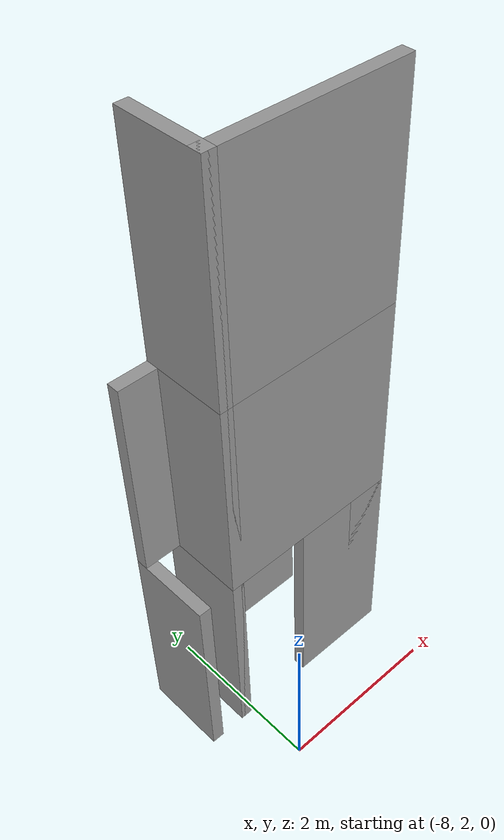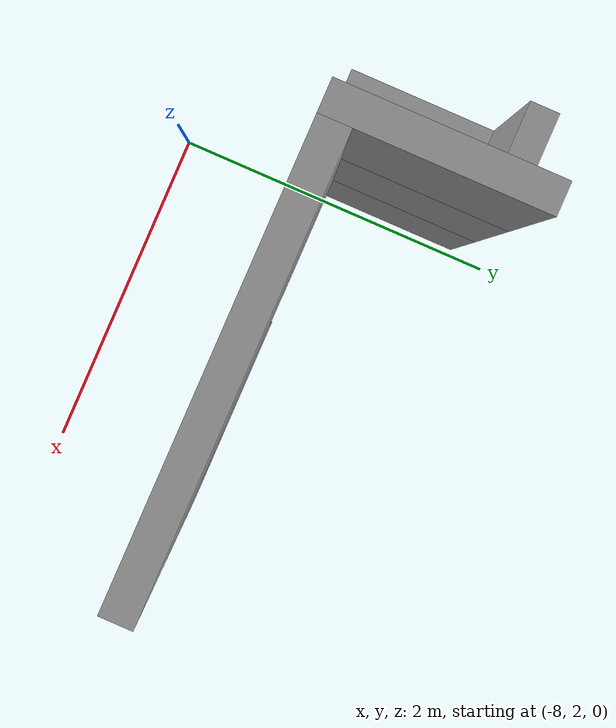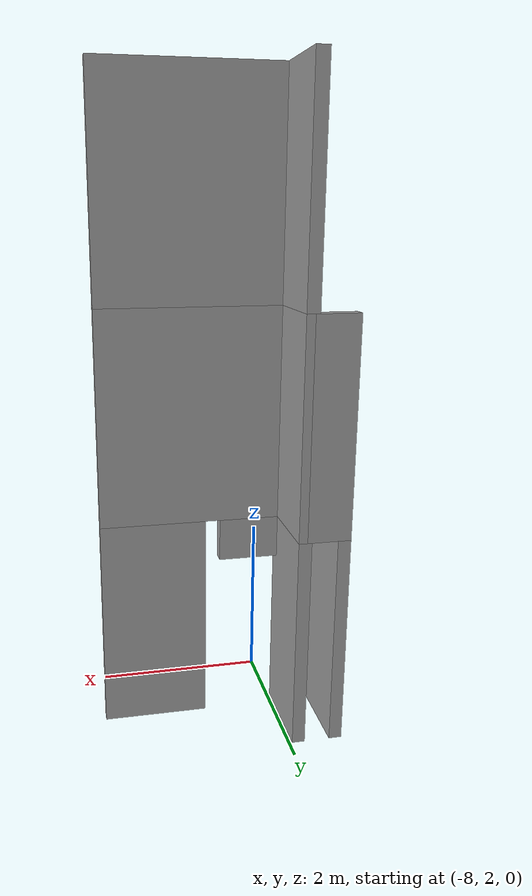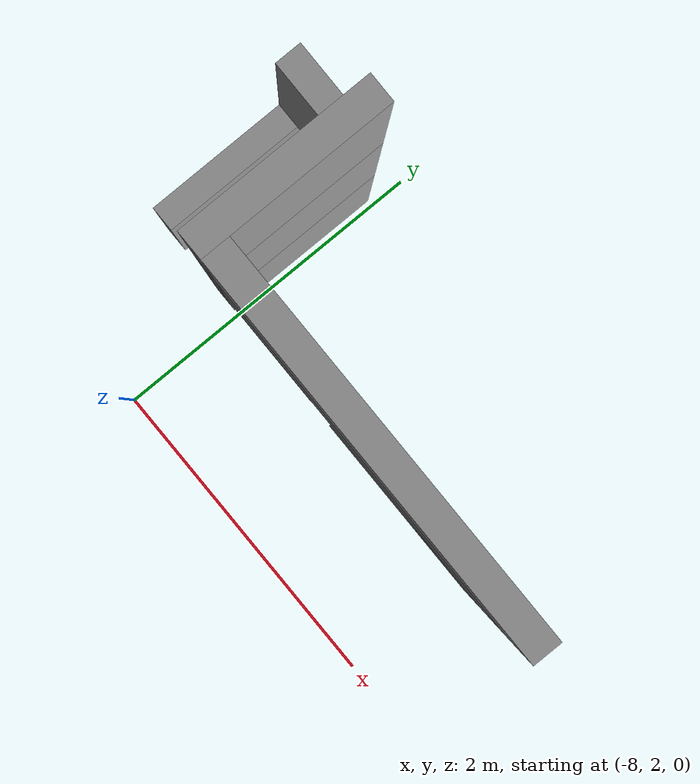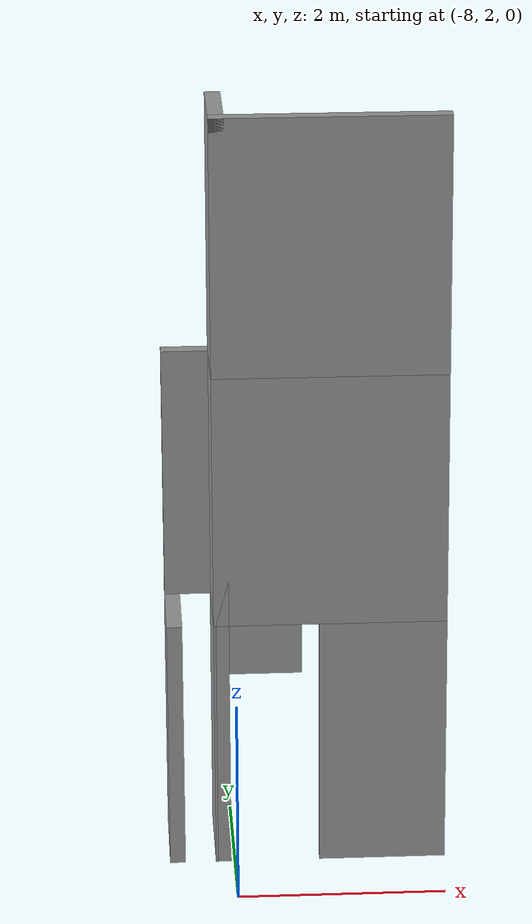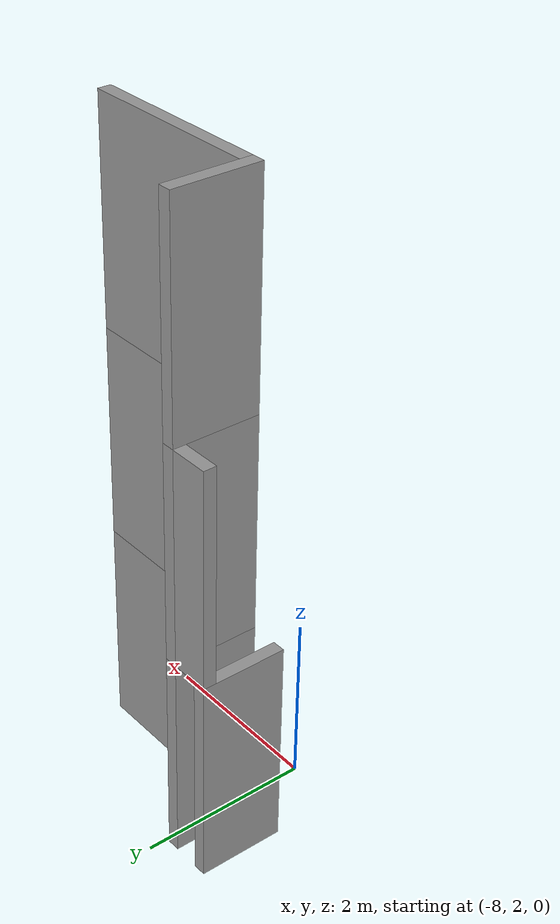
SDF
<sdf version="1.7">
 <model name="mapagazebo">
  <pose>-4.67869 9.01252 0 0 -0 0</pose>
  <link name="Wall_1144">
   <collision name="Wall_1144_Collision">
    <geometry><box><size>0.5 0.15 2.5</size></box></geometry>
    <pose>0 0 1.25 0 -0 0</pose>
   </collision>
   <visual name="Wall_1144_Visual">
    <pose>0 0 1.25 0 -0 0</pose>
    <geometry><box><size>0.5 0.15 2.5</size></box></geometry>
    <material>
     <script><uri>file://media/materials/scripts/gazebo.material</uri><name>Gazebo/Grey</name></script>
     <ambient>1 1 1 1</ambient>
    </material>
    <meta><layer>1</layer></meta>
   </visual>
   <pose>-3.70959 -5.30647 2.5 0 -0 0</pose>
  </link>
  <link name="Wall_1146">
   <collision name="Wall_1146_Collision">
    <geometry><box><size>1 0.15 2.5</size></box></geometry>
    <pose>0 0 1.25 0 -0 0</pose>
   </collision>
   <visual name="Wall_1146_Visual">
    <pose>0 0 1.25 0 -0 0</pose>
    <geometry><box><size>1 0.15 2.5</size></box></geometry>
    <material>
     <script><uri>file://media/materials/scripts/gazebo.material</uri><name>Gazebo/Grey</name></script>
     <ambient>1 1 1 1</ambient>
    </material>
    <meta><layer>1</layer></meta>
   </visual>
   <pose>-3.43459 -5.73147 2.5 0 -0 -1.5708</pose>
  </link>
  <link name="Wall_1147">
   <collision name="Wall_1147_Collision">
    <geometry><box><size>2.25 0.15 2.5</size></box></geometry>
    <pose>0 0 1.25 0 -0 0</pose>
   </collision>
   <visual name="Wall_1147_Visual">
    <pose>0 0 1.25 0 -0 0</pose>
    <geometry><box><size>2.25 0.15 2.5</size></box></geometry>
    <material>
     <script><uri>file://media/materials/scripts/gazebo.material</uri><name>Gazebo/Grey</name></script>
     <ambient>1 1 1 1</ambient>
    </material>
    <meta><layer>1</layer></meta>
   </visual>
   <pose>-2.38459 -6.15647 2.5 0 -0 0</pose>
  </link>
  <link name="Wall_1770">
   <collision name="Wall_1770_Collision">
    <geometry><box><size>1 0.15 2.5</size></box></geometry>
    <pose>0 0 1.25 0 -0 0</pose>
   </collision>
   <visual name="Wall_1770_Visual">
    <pose>0 0 1.25 0 -0 0</pose>
    <geometry><box><size>1 0.15 2.5</size></box></geometry>
    <material>
     <script><uri>file://media/materials/scripts/gazebo.material</uri><name>Gazebo/Grey</name></script>
     <ambient>1 1 1 1</ambient>
    </material>
    <meta><layer>2</layer></meta>
   </visual>
   <pose>-3.43459 -5.73147 5 0 -0 -1.5708</pose>
  </link>
  <link name="Wall_1771">
   <collision name="Wall_1771_Collision">
    <geometry><box><size>2.25 0.15 2.5</size></box></geometry>
    <pose>0 0 1.25 0 -0 0</pose>
   </collision>
   <visual name="Wall_1771_Visual">
    <pose>0 0 1.25 0 -0 0</pose>
    <geometry><box><size>2.25 0.15 2.5</size></box></geometry>
    <material>
     <script><uri>file://media/materials/scripts/gazebo.material</uri><name>Gazebo/Grey</name></script>
     <ambient>1 1 1 1</ambient>
    </material>
    <meta><layer>2</layer></meta>
   </visual>
   <pose>-2.38459 -6.15647 5 0 -0 0</pose>
  </link>
  <link name="Wall_452">
   <collision name="Wall_452_Collision">
    <geometry><box><size>1 0.15 2.5</size></box></geometry>
    <pose>0 0 1.25 0 -0 0</pose>
   </collision>
   <visual name="Wall_452_Visual">
    <pose>0 0 1.25 0 -0 0</pose>
    <geometry><box><size>1 0.15 2.5</size></box></geometry>
    <material>
     <script><uri>file://media/materials/scripts/gazebo.material</uri><name>Gazebo/Grey</name></script>
     <ambient>1 1 1 1</ambient>
    </material>
    <meta><layer>0</layer></meta>
   </visual>
   <pose>-3.88459 -5.73147 0 0 -0 1.5708</pose>
  </link>
  <link name="Wall_455">
   <collision name="Wall_455_Collision">
    <geometry><box><size>1 0.15 2.5</size></box></geometry>
    <pose>0 0 1.25 0 -0 0</pose>
   </collision>
   <visual name="Wall_455_Visual">
    <pose>0 0 1.25 0 -0 0</pose>
    <geometry><box><size>1 0.15 2.5</size></box></geometry>
    <material>
     <script><uri>file://media/materials/scripts/gazebo.material</uri><name>Gazebo/Grey</name></script>
     <ambient>1 1 1 1</ambient>
    </material>
    <meta><layer>0</layer></meta>
   </visual>
   <pose>-3.43459 -5.73147 0 0 -0 -1.5708</pose>
  </link>
  <link name="Wall_456">
   <pose>-2.38459 -6.15647 0 0 -0 0</pose>
   <visual name="Wall_456_Visual_0">
    <pose>-1.06597 0 1.25 0 -0 0</pose>
    <geometry><box><size>0.11805 0.15 2.5</size></box></geometry>
    <material>
     <script><uri>file://media/materials/scripts/gazebo.material</uri><name>Gazebo/Grey</name></script>
     <ambient>1 1 1 1</ambient>
    </material>
    <meta><layer>0</layer></meta>
   </visual>
   <collision name="Wall_456_Collision_0">
    <geometry><box><size>0.11805 0.15 2.5</size></box></geometry>
    <pose>-1.06597 0 1.25 0 -0 0</pose>
   </collision>
   <visual name="Wall_456_Visual_1">
    <pose>0.509025 0 1.25 0 -0 0</pose>
    <geometry><box><size>1.23195 0.15 2.5</size></box></geometry>
    <material>
     <script><uri>file://media/materials/scripts/gazebo.material</uri><name>Gazebo/Grey</name></script>
     <ambient>1 1 1 1</ambient>
    </material>
    <meta><layer>0</layer></meta>
   </visual>
   <collision name="Wall_456_Collision_1">
    <geometry><box><size>1.23195 0.15 2.5</size></box></geometry>
    <pose>0.509025 0 1.25 0 -0 0</pose>
   </collision>
   <visual name="Wall_456_Visual_2">
    <pose>0.873674 0 1.25 0 -0 0</pose>
    <geometry><box><size>0.502652 0.15 2.5</size></box></geometry>
    <material>
     <script><uri>file://media/materials/scripts/gazebo.material</uri><name>Gazebo/Grey</name></script>
     <ambient>1 1 1 1</ambient>
    </material>
    <meta><layer>0</layer></meta>
   </visual>
   <collision name="Wall_456_Collision_2">
    <geometry><box><size>0.502652 0.15 2.5</size></box></geometry>
    <pose>0.873674 0 1.25 0 -0 0</pose>
   </collision>
   <visual name="Wall_456_Visual_3">
    <pose>-0.642301 0 2.25 0 -0 0</pose>
    <geometry><box><size>0.729299 0.15 0.5</size></box></geometry>
    <material>
     <script><uri>file://media/materials/scripts/gazebo.material</uri><name>Gazebo/Grey</name></script>
     <ambient>1 1 1 1</ambient>
    </material>
    <meta><layer>0</layer></meta>
   </visual>
   <collision name="Wall_456_Collision_3">
    <geometry><box><size>0.729299 0.15 0.5</size></box></geometry>
    <pose>-0.642301 0 2.25 0 -0 0</pose>
   </collision>
  </link>
  <static>1</static>
 </model>
</sdf>
